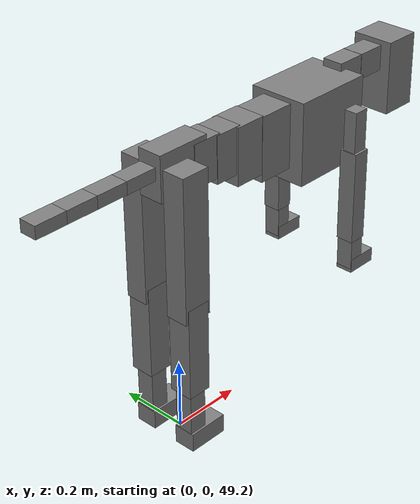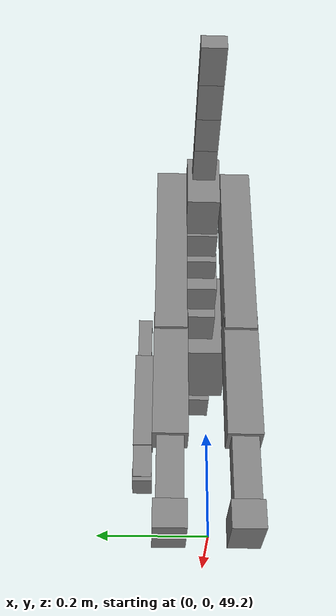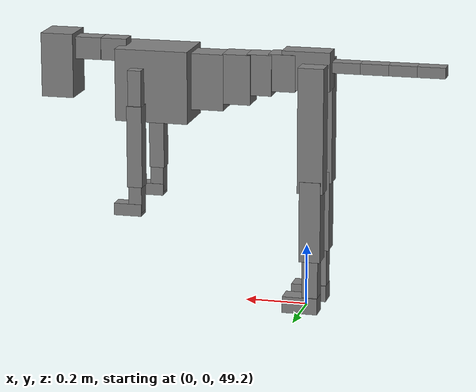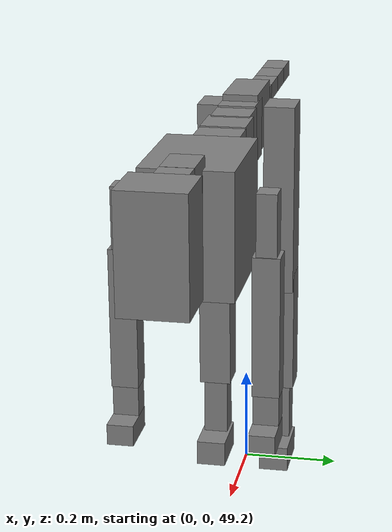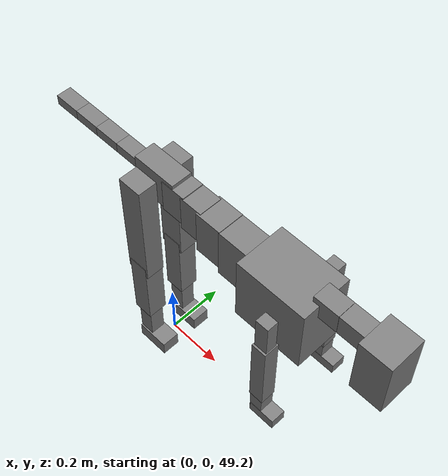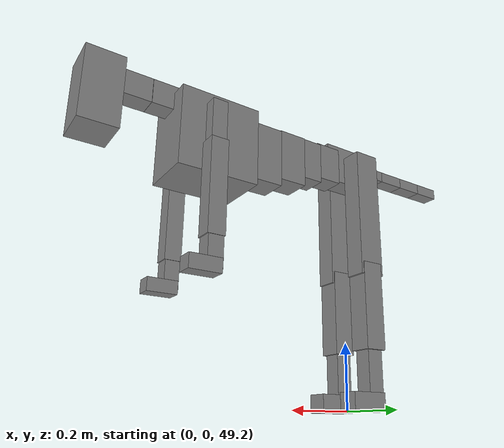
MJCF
<mujoco model="dog">

    <default>
        <joint armature="0.02" stiffness="1" damping="0.2" limited="true"/>
        <geom condim="3" friction="1 0.05 0.05" margin="0.01"/>
        <motor ctrllimited="true" ctrlrange="-1.0 1.0" forcelimited="true" gear="50"/>
    </default>

    <compiler inertiafromgeom="true" angle="radian"/>

    <option timestep="0.016" iterations="50" tolerance="1e-10" solver="Newton" jacobian="dense" cone="pyramidal"/>

    <size nconmax="20000" njmax="60000" nstack="5000000"/>
    <visual>
        <map force="0.1" zfar="30"/>
        <rgba haze="0.15 0.25 0.35 1"/>
        <quality shadowsize="2048"/>
        <global offwidth="800" offheight="800"/>
    </visual>

    <asset>
        <texture type="skybox" builtin="gradient" rgb1="0.3 0.5 0.7" rgb2="0 0 0" width="512" height="512"/>
        <texture name="texplane" type="2d" builtin="checker" rgb1=".2 .3 .4" rgb2=".1 0.15 0.2" width="512" height="512"
                 mark="cross" markrgb=".8 .8 .8"/>
        <texture name="texgeom" type="cube" builtin="flat" mark="cross" width="127" height="1278" rgb1="0.8 0.6 0.4"
                 rgb2="0.8 0.6 0.4" markrgb="1 1 1" random="0.01"/>

        <material name="matplane" reflectance="0.3" texture="texplane" texrepeat="1 1" texuniform="true"/>
        <material name="matgeom" texture="texgeom" texuniform="true" rgba="0.8 0.6 .4 1"/>
    </asset>

    <worldbody>
        <geom name="floor" pos="0 0 0" size="0 0 .25" type="plane" material="matplane" condim="3"/>

        <light directional="false" diffuse=".2 .2 .2" specular="0 0 0" pos="0 0 5" dir="0 0 -1" castshadow="false"/>
        <light mode="targetbodycom" target="torso" directional="false" diffuse=".8 .8 .8" specular="0.3 0.3 0.3"
               pos="0 0 4.0" dir="0 0 -1"/>

        <body name="root" pos="0 0 50">
            <freejoint name="root_1"/>
            <geom type="box" pos="0 0 -0.02" size="0.0774  0.0358  0.063" density="2030"/>

            <body name="spine1" pos="0.054 0 0">
                <joint name="spine1_y" axis="0 1 0" range="0 0.7" limited="true"/>
                <geom type="box" pos="0.02375 0 -0.03" size="0.04375  0.0375  0.05985" density="2030"/>

                <body name="spine2" pos="0.0612 0 0">
                    <joint name="spine2_y" axis="0 1 0" range="-0.15 0.15" limited="true"/>
                    <geom type="box" pos="0.03555  0  -0.04" size="0.04055  0.039  0.06615" density="2030"/>

                    <body name="spine3" pos="0.0730 0 0">
                        <joint name="spine3_y" axis="0 1 0" range="-0.15 0.15" limited="true"/>
                        <geom type="box" pos="0.03555  0  -0.057" size="0.04555  0.0445  0.081" density="2030"/>

                        <body name="spine4" pos="0.0780 0 0">
                            <joint name="spine4_y" axis="0 1 0" range="-0.15 0.15" limited="true"/>
                            <geom type="box" pos="0.05265  0  -0.07" size="0.05265  0.045  0.09135" density="2030"/>

                            <body name="torso" pos="0.1082 0 0">
                                <joint name="torso_y" axis="0 1 0" range="-0.15 0.15" limited="true"/>
                                <geom type="box" pos="0.11925  0  -0.085" size="0.11925  0.085  0.11745"
                                      density="2030"/>

                                <body name="neck1" pos="0.2160  0   0.0180">
                                    <joint name="neck1_y" axis="0 1 0" range="-1.2  -1" limited="true"/>
                                    <geom type="box" pos="0.0423  0  0" size="0.0423  0.03  0.036" density="2325"/>

                                    <body name="neck2" pos="0.0853  0  0">
                                        <joint name="neck2_y" axis="0 1 0" range="0.1  0" limited="true"/>
                                        <geom type="box" pos="0.0423  0  0" size="0.0423  0.03  0.036" density="2325"/>

                                        <body name="head" pos="0.0853  0  0">
                                            <joint name="head_y" axis="0 1 0" range="-0.3  -0.2" limited="true"/>
                                            <geom type="box" pos="0.0531  0  -0.055" size="0.0531  0.06  0.1044"
                                                  density="4030"/>

                                        </body>
                                    </body>
                                </body>

                                <body name="front_shoulder" pos="0.156  0   -0.0480">
                                    <joint name="front_shoulder_y" axis="0 1 0" range="-1 1.5" limited="true"/>
                                    <geom type="box" pos="0 0.13 -0.0444" size="0.0217  0.0186  0.0711" density="1158"/>
                                    <geom type="box" pos="0 -0.13 -0.0444" size="0.0217  0.0186  0.0711"
                                          density="1158"/>

                                    <body name="front_elbow" pos="0  0  -0.0888">
                                        <joint name="front_elbow_y" axis="0 1 0" range="-2 0" limited="true"/>
                                        <geom type="box" pos="0 0.13 -0.1322" size="0.0247  0.0252  0.1322"
                                              density="1081"/>
                                        <geom type="box" pos="0 -0.13 -0.1322" size="0.0247  0.0252  0.1322"
                                              density="1081"/>

                                        <body name="front_wrist" pos="0  0  -0.2644">
                                            <joint name="front_wrist_y" axis="0 1 0" range="-0.2 0" limited="true"/>
                                            <geom type="box" pos="0 0.13 -0.0358" size="0.0215  0.0238  0.0490"
                                                  density="1664"/>
                                            <geom type="box" pos="0 -0.13 -0.0358" size="0.0215  0.0238  0.0490"
                                                  density="1664"/>

                                            <body name="front_finger_end" pos="0  0  -0.0716">
                                                <joint name="front_finger_y" axis="0 1 0" range="-0.4 1"
                                                       limited="true"/>
                                                <geom type="box" pos="0.0245  0.13  -0.0046"
                                                      size="0.0449  0.0245  0.0196" density="1515"/>
                                                <geom type="box" pos="0.0245  -0.13  -0.0046"
                                                      size="0.0449  0.0245  0.0196" density="1515"/>

                                            </body>

                                        </body>
                                    </body>
                                </body>

                            </body>
                        </body>
                    </body>
                </body>
            </body>

            <body name="back_hip" pos="-0.03 0 -0.018">
                <joint name="back_hip_y" axis="0 1 0" range="-1.5 0.3" limited="true"/>
                <geom type="box" pos="0 0.07 -0.1803" size="0.0415  0.0325  0.2031" density="1154"/>
                <geom type="box" pos="0 -0.07 -0.1803" size="0.0415  0.0325  0.2031" density="1154"/>

                <body name="back_knee" pos="0  0  -0.3607">
                    <joint name="back_knee_y" axis="0 1 0" range="0 2.8" limited="true"/>
                    <geom type="box" pos="0 0.07 -0.1165" size="0.0344  0.0339  0.1320" density="1227"/>
                    <geom type="box" pos="0 -0.07 -0.1165" size="0.0344  0.0339  0.1320" density="1227"/>

                    <body name="back_ankle" pos="0  0  -0.2329">
                        <joint name="back_ankle_y" axis="0 1 0" range="-2.2 0" limited="true"/>
                        <geom type="box" pos="0 0.07 -0.0759" size="0.0258  0.0258  0.0871" density="1284"/>
                        <geom type="box" pos="0 -0.07 -0.0759" size="0.0258  0.0258  0.0871" density="1284"/>

                        <body name="back_toe_end" pos="0  0  -0.1517">
                            <joint name="back_toe_y" axis="0 1 0" range="-0.4 1" limited="true"/>
                            <geom type="box" pos="0.0313  0.07  -0.0119" size="0.0573  0.0313  0.0269" density="1515"/>
                            <geom type="box" pos="0.0313  -0.07  -0.0119" size="0.0573  0.0313  0.0269" density="1515"/>

                        </body>
                    </body>
                </body>
            </body>

            <body name="tail1" pos="-0.074 0 -0.006">
                <joint name="tail1_y" axis="0 1 0" range="-0.2 0.2" limited="true"/>
                <geom type="box" pos="-0.0536  0  0" size="0.045  0.025  0.0175" density="1587"/>

                <body name="tail2" pos="-0.09 0 0">
                    <joint name="tail2_y" axis="0 1 0" range="-0.2 0.2" limited="true"/>
                    <geom type="box" pos="-0.0536  0  0" size="0.045  0.025  0.0175" density="1587"/>

                    <body name="tail3" pos="-0.09 0 0">
                        <joint name="tail3_y" axis="0 1 0" range="-0.2 0.2" limited="true"/>
                        <geom type="box" pos="-0.0536  0  0" size="0.045  0.025  0.0175" density="1587"/>

                        <body name="tail4" pos="-0.09 0 0">
                            <joint name="tail4_y" axis="0 1 0" range="-0.2 0.2" limited="true"/>
                            <geom type="box" pos="-0.0536  0  0" size="0.045  0.025  0.0175" density="1587"/>

                        </body>
                    </body>
                </body>
            </body>
        </body>
    </worldbody>

    <actuator>
        <motor joint="spine1_y" forcerange="-150 150     "/>
        <motor joint="spine2_y" forcerange="-150 150     "/>
        <motor joint="spine3_y" forcerange="-150 150     "/>
        <motor joint="spine4_y" forcerange="-150 150     "/>
        <motor joint="torso_y" forcerange="-150 150     "/>
        <motor joint="neck1_y" forcerange="-100 100       "/>
        <motor joint="neck2_y" forcerange="-100 100       "/>
        <motor joint="head_y" forcerange="-150 150       "/>
        <motor joint="front_shoulder_y" forcerange="-100.98 122.71"/>
        <motor joint="front_elbow_y" forcerange="-113.02 170.38"/>
        <motor joint="front_wrist_y" forcerange="-58.03 132.65"/>
        <motor joint="front_finger_y" forcerange="-56.23 34.49"/>
        <motor joint="back_hip_y" forcerange="-258.47 375.30"/>
        <motor joint="back_knee_y" forcerange="-331.03 361.53"/>
        <motor joint="back_angle_y" forcerange="-200.85 111.47"/>
        <motor joint="back_toe_y" forcerange="-119.32 50.83"/>
        <motor joint="tail1_y" forcerange="-50 50     "/>
        <motor joint="tail2_y" forcerange="-50 50     "/>
        <motor joint="tail3_y" forcerange="-50 50     "/>
        <motor joint="tail4_y" forcerange="-50 50     "/>
    </actuator>
</mujoco>
